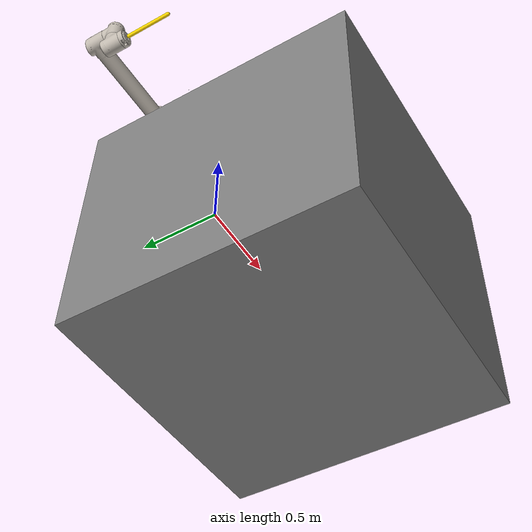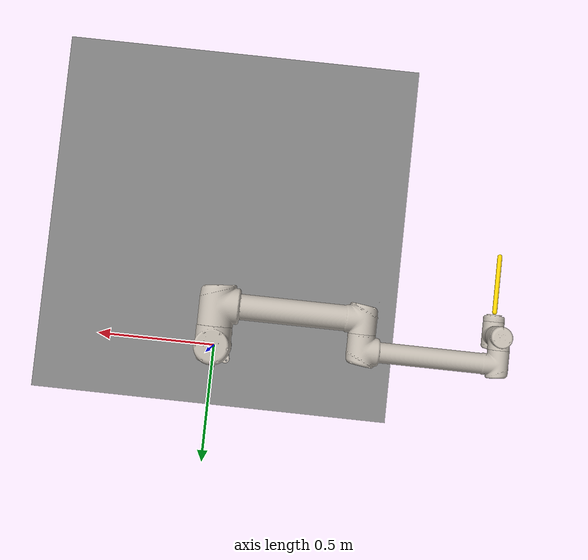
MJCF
<mujoco model="ur10">
  <compiler angle="radian" autolimits="true"/>

  <option integrator="implicitfast"/>

  <default>
    <default class="ur10">
      <material specular="0.5" shininess="0.25"/>
      <joint axis="0 1 0" range="-6.28319 6.28319" armature="0.1"/>
      <position ctrlrange="-6.2831 6.2831" kp="5000" kv="500"/>

      <default class="size4">
        <joint damping="10"/>
        <position forcerange="-330 330" kp="17000" kv="1700"/>
      </default>
      <default class="size3">
        <joint damping="5"/>
        <position forcerange="-150 150" kp="14000" kv="1400"/>
        <default class="size3_limited">
          <joint range="-3.1415 3.1415"/>
          <position ctrlrange="-3.1415 3.1415"/>
        </default>
      </default>
      <default class="size2">
        <joint damping="2"/>
        <position forcerange="-56 56" kp="9000" kv="900"/>
      </default>

      <default class="visual">
        <geom type="mesh" contype="0" conaffinity="0" group="2"/>
      </default>
      <!-- Not all collision computation is needed -->
      <default class="collision">
        <geom type="capsule" condim="3" contype="1" conaffinity="1" group="3"/>
      </default>

      <site size="0.01" rgba="1.0 0.5 0.0 0.5" group="3"/>
    </default>
  </default>

  <asset>
    <mesh file="ur10/ur10/visual/base.obj"/>
    <mesh file="ur10/ur10/visual/shoulder.obj"/>
    <mesh file="ur10/ur10/visual/upperarm.obj"/>
    <mesh file="ur10/ur10/visual/forearm.obj"/>
    <mesh file="ur10/ur10/visual/wrist1.obj"/>
    <mesh file="ur10/ur10/visual/wrist2.obj"/>
    <mesh file="ur10/ur10/visual/wrist3.obj"/>

    <texture name="base_texture" type="2d" file="ur10/ur10/visual/base_color.png"/>
    <texture name="shoulder_texture" type="2d" file="ur10/ur10/visual/shoulder_color.png"/>
    <texture name="upperarm_texture" type="2d" file="ur10/ur10/visual/upperarm_color.png"/>
    <texture name="forearm_texture" type="2d" file="ur10/ur10/visual/forearm_color.png"/>
    <texture name="wrist1_texture" type="2d" file="ur10/ur10/visual/wrist1_color.png"/>
    <texture name="wrist2_texture" type="2d" file="ur10/ur10/visual/wrist2_color.png"/>
    <texture name="wrist3_texture" type="2d" file="ur10/ur10/visual/wrist3_color.png"/>

    <material class="ur10" name="base_visual" texture="base_texture" />
    <material class="ur10" name="shoulder_visual" texture="shoulder_texture" />
    <material class="ur10" name="upperarm_visual" texture="upperarm_texture" />
    <material class="ur10" name="forearm_visual" texture="forearm_texture" />
    <material class="ur10" name="wrist1_visual" texture="wrist1_texture" />
    <material class="ur10" name="wrist2_visual" texture="wrist2_texture" />
    <material class="ur10" name="wrist3_visual" texture="wrist3_texture" />

    <material class="ur10" name="black" rgba="0.033 0.033 0.033 1"/>
    <material class="ur10" name="gold" rgba="1 0.843 0 1"/>
  </asset>

  <worldbody>
    <!-- Add Lab Scene -->
    <body name="lab_scene" pos="0 0 0" euler="0 0 0">
      <geom name="lab_scene_visual_geom" type="box" size="0.762 0.762 0.7" pos="0.0 -0.508 -0.7" euler="0 0 0" contype="0" conaffinity="0" group="0" />
      <geom name="lab_scene_collision_geom" type="box" size="0.762 0.762 0.7" pos="0.0 -0.508 -0.7" euler="0 0 0" contype="1" conaffinity="1" group="3" />
      <inertial pos="0 0 0" euler="0 0 0" mass="10.0" diaginertia="0.001 0.001 0.001" />
    </body>

    <light name="top" pos="0 0 2" mode="trackcom"/>

    <body name="base" quat="0 0 0 -1" childclass="ur10">
      <inertial mass="4.0" pos="0 0 0" diaginertia="0.0061063308908 0.0061063308908 0.01125"/>
      <geom mesh="base" material="base_visual" class="visual"/>

      <body name="shoulder_link" pos="0 0 0.1273">
        <inertial pos="0 0 0" mass="7.778" diaginertia="0.0314743 0.0314743 0.0218756"/>
        <joint name="shoulder_pan_joint" class="size4" axis="0 0 1"/>
        <geom mesh="shoulder" material="shoulder_visual" class="visual"/>
        <geom name="shoulder_collision" class="collision" size="0.078 0.035" pos="0 0 -0.01"/>

        <body name="upperarm_link" pos="0 0.220941 0" quat="1 0 1 0">
          <inertial pos="0 0 0.3065" mass="12.93" diaginertia="0.421754 0.421754 0.0363656"/>
          <joint name="shoulder_lift_joint" class="size4"/>
          <geom mesh="upperarm" material="upperarm_visual" class="visual"/>
          <geom name="upperarm_collision_0" class="collision" pos="0 -0.1 0" quat="1 1 0 0" size="0.078 0.08"/>
          <geom name="upperarm_collision_1" class="collision" size="0.055 0.3" pos="0 -0.045 0.3"/>

          <body name="forearm_link" pos="0 -0.1719 0.612">
            <inertial pos="0 0 0.28615" mass="3.87" diaginertia="0.11107 0.11107 0.0108844"/>
            <joint name="elbow_joint" class="size3_limited"/>
            <geom mesh="forearm" material="forearm_visual" class="visual"/>
            <geom name="forearm_collision_0" class="collision" pos="0 0.065 0" quat="1 1 0 0" size="0.058 0.085"/>
            <geom name="forearm_collision_1" class="collision" size="0.045 0.28" pos="0 -0.001 0.29"/>

            <body name="wrist_1_link" pos="0 0 0.5723" quat="1 0 1 0">
              <inertial pos="0 0.1149 0" quat="0.5 0.5 -0.5 0.5" mass="1.96"
                diaginertia="0.00551245 0.0051082 0.0051082"/>
              <joint name="wrist_1_joint" class="size2"/>
              <geom mesh="wrist1" material="wrist1_visual" class="visual"/>
              <geom name="wrist_1_collision" class="collision" pos="0 0.045 0" quat="1 1 0 0" size="0.05 0.06"/>

              <body name="wrist_2_link" pos="0 0.1149 0">
                <inertial pos="0 0 0.1157" quat="0.5 0.5 -0.5 0.5" mass="1.96"
                  diaginertia="0.00551245 0.0051082 0.0051082"/>
                <joint name="wrist_2_joint" axis="0 0 1" class="size2"/>
                <geom mesh="wrist2" material="wrist2_visual" class="visual"/>
                <geom name="wrist_2_collision_0" class="collision" size="0.046 0.065" pos="0 -0.001 0.045"/>
                <geom name="wrist_2_collision_1" class="collision" pos="0 0.022 0.116" quat="1 1 0 0" size="0.046 0.03"/>

                <body name="wrist_3_link" pos="0 0 0.1157">
                  <inertial pos="0.07695 0 0" quat="0 1 -1 0" mass="0.202"
                    diaginertia="0.000204525 0.00011792 0.00011792"/>
                  <joint name="wrist_3_joint" class="size2"/>
                  <geom mesh="wrist3" material="wrist3_visual" class="visual"/>

                  <body name="rod" pos="0 0.2222 0" quat="1 -1 0 0">
                    <inertial pos="0 0 0" mass="0.1" diaginertia="0.001 0.001 0.001"/>
                    <geom type="capsule" size="0.01 0.12" material="gold" class="visual"/>
                    <geom name="rod_collision" class="collision" size="0.01 0.12" contype="1" conaffinity="1"/>
                    <site name="attachment_site" pos="0 0 0.13" rgba="1 0 0 0" group="1"/>
                  </body>
                </body>
              </body>
            </body>
          </body>
        </body>
      </body>
    </body>
  </worldbody>

  <actuator>
    <position class="size4" name="shoulder_pan" joint="shoulder_pan_joint"/>
    <position class="size4" name="shoulder_lift" joint="shoulder_lift_joint"/>
    <position class="size3_limited" name="elbow" joint="elbow_joint"/>
    <position class="size2" name="wrist_1" joint="wrist_1_joint"/>
    <position class="size2" name="wrist_2" joint="wrist_2_joint"/>
    <position class="size2" name="wrist_3" joint="wrist_3_joint"/>
  </actuator>
</mujoco>
